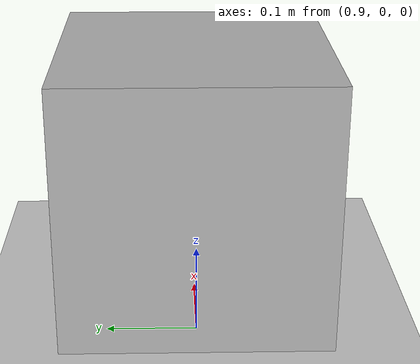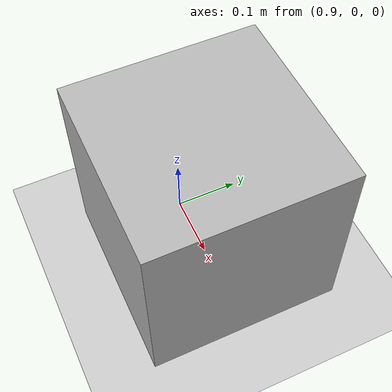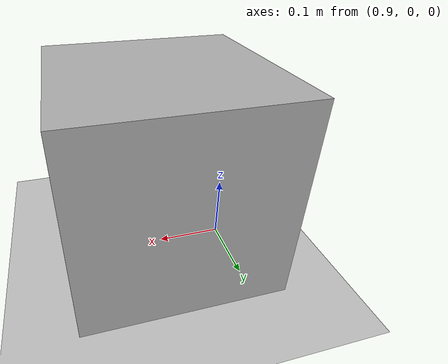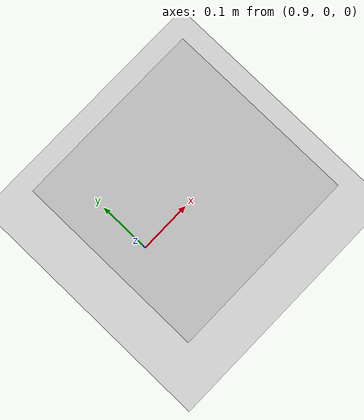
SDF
<?xml version="1.0" ?>
<sdf version="1.9">
  <world name="empty_lab">
    <plugin filename="gz-sim-physics-system" name="gz::sim::systems::Physics"/>
    <plugin filename="gz-sim-user-commands-system" name="gz::sim::systems::UserCommands"/>
    <plugin filename="gz-sim-scene-broadcaster-system" name="gz::sim::systems::SceneBroadcaster"/>
    <plugin filename="gz-sim-sensors-system" name="gz::sim::systems::Sensors">
      <render_engine>ogre2</render_engine>
    </plugin>

    <gravity>0 0 -9.81</gravity>

    <model name="ground_plane">
      <static>true</static>
      <link name="link">
        <collision name="collision">
          <geometry><plane><normal>0 0 1</normal><size>20 20</size></plane></geometry>
        </collision>
        <visual name="visual">
          <geometry><plane><normal>0 0 1</normal><size>20 20</size></plane></geometry>
          <material><ambient>0.8 0.8 0.8 1</ambient><diffuse>0.8 0.8 0.8 1</diffuse></material>
        </visual>
      </link>
    </model>

    <model name="test_box">
      <pose>1.0 0.0 0.15 0 0 0</pose>
      <link name="link">
        <collision name="collision"><geometry><box><size>0.30 0.30 0.30</size></box></geometry></collision>
        <visual name="visual"><geometry><box><size>0.30 0.30 0.30</size></box></geometry></visual>
      </link>
    </model>

    <light name="sun" type="directional">
      <pose>0 0 10 0 0 0</pose>
      <diffuse>0.8 0.8 0.8 1</diffuse>
      <specular>0.2 0.2 0.2 1</specular>
      <direction>-0.5 0.1 -0.9</direction>
    </light>
  </world>
</sdf>
